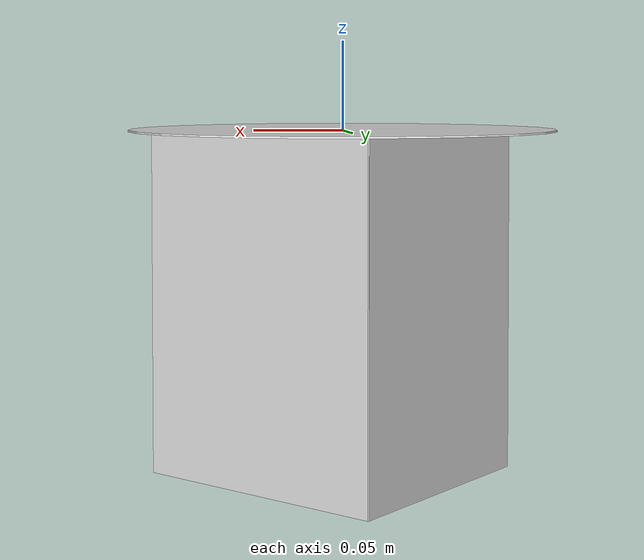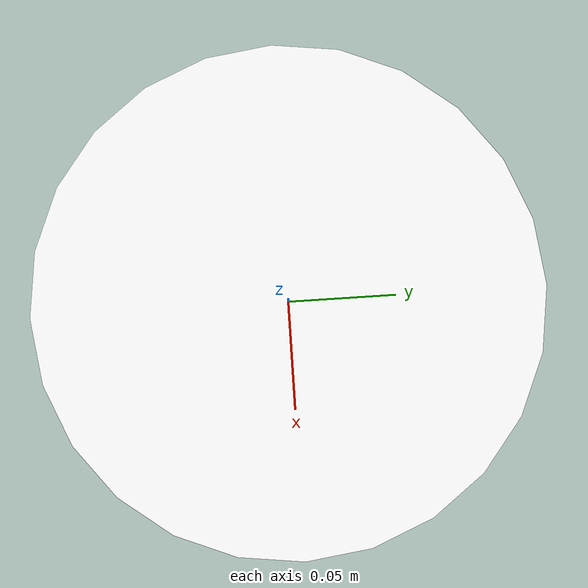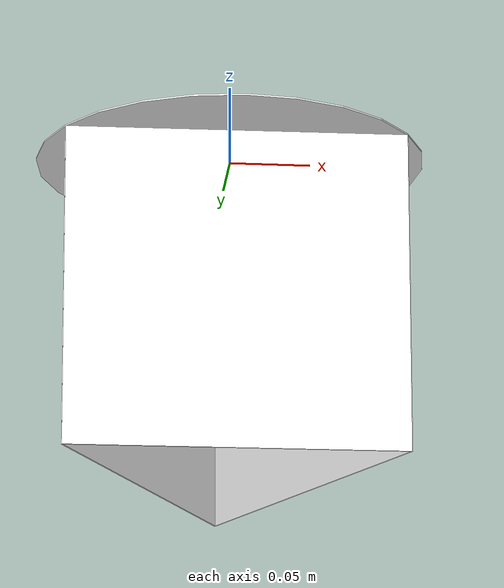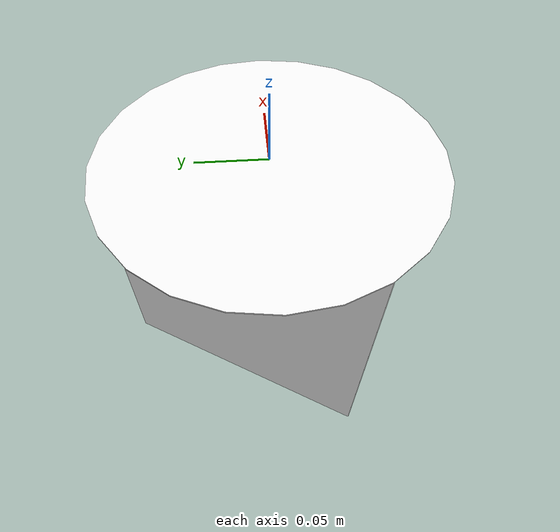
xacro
<?xml version="1.0"?>

<robot name="platform"
	xmlns:xi="http://www.w3.org/2001/XInclude"
	xmlns:gazebo="http://playerstage.sourceforge.net/gazebo/xmlschema/#gz"
	xmlns:model="http://playerstage.sourceforge.net/gazebo/xmlschema/#model"
	xmlns:sensor="http://playerstage.sourceforge.net/gazebo/xmlschema/#sensor"
	xmlns:body="http://playerstage.sourceforge.net/gazebo/xmlschema/#body"
	xmlns:geom="http://playerstage.sourceforge.net/gazebo/xmlschema/#geom"
	xmlns:joint="http://playerstage.sourceforge.net/gazebo/xmlschema/#joint"
	xmlns:interface="http://playerstage.sourceforge.net/gazebo/xmlschema/#interface"
	xmlns:rendering="http://playerstage.sourceforge.net/gazebo/xmlschema/#rendering"
	xmlns:renderable="http://playerstage.sourceforge.net/gazebo/xmlschema/#renderable"
	xmlns:controller="http://playerstage.sourceforge.net/gazebo/xmlschema/#controller"
	xmlns:physics="http://playerstage.sourceforge.net/gazebo/xmlschema/#physics">

	<property name="platform_radius" value="0.12" />
	<property name="platform_height" value="0.001" />
	<property name="tube_radius" value="0.07" />
	<property name="height" value="0.20" />
	<property name="box_width" value="0.001" />
	<property name="box_depth" value="0.207846097" />
	<property name="PI" value="3.1415926535897931" />

	<link name="platform_link">
		<child link="tube_joint" />
		<inertial>
			<mass value="1.0" />
			<origin xyz="0 0 0" rpy="0 0 0" />
			<inertia ixx="0" ixy="0" ixz="0" iyy="0" iyz="0" izz="0" />
		</inertial>
		<visual>
			<origin xyz="0 0 0" rpy="0 0 0" />
			<geometry>
				<cylinder radius="${platform_radius}" length="${platform_height}" />
			</geometry>
		</visual>
		<collision>
			<origin xyz="0 0 0" rpy="0 0 0" />
			<geometry>
				<cylinder radius="${platform_radius}" length="${platform_height}" />
			</geometry>
		</collision>
	</link>
	<gazebo reference="platform_link">
		<material>Gazebo/White</material>
	</gazebo>

	<joint name="box1_joint" type="fixed">
		<parent link="platform_link" />
		<origin xyz="0 0 0" rpy="0 0 0" />
		<child link="box1_link" />
	</joint>
	<link name="box1_link">
		<inertial>
			<mass value="1.0" />
			<origin xyz="-0.0 -0.06 ${-height/2-platform_height/2}" rpy="0 0 ${PI/2}" />
			<inertia ixx="0" ixy="0" ixz="0" iyy="0" iyz="0" izz="0" />
		</inertial>
		<visual>
			<origin xyz="-0.0 -0.06 ${-height/2-platform_height/2}" rpy="0 0 ${PI/2}" />
			<geometry>
				<box size="${box_width} ${box_depth} ${height}" />
			</geometry>
		</visual>
		<collision>
			<origin xyz="-0.0 -0.06 ${-height/2-platform_height/2}" rpy="0 0 ${PI/2}" />
			<geometry>
				<box size="${box_width} ${box_depth} ${height}" />
			</geometry>
		</collision>
	</link>
	<gazebo reference="box1_link">
		<material>Gazebo/White</material>
	</gazebo>

	<joint name="box2_joint" type="fixed">
		<parent link="platform_link" />
		<origin xyz="0 0 0" rpy="0 0 0" />
		<child link="box2_link" />
	</joint>
	<link name="box2_link">
		<inertial>
			<mass value="1.0" />
			<origin xyz="0.051961524 0.03 ${-height/2-platform_height/2}" rpy="0 0 ${PI/6}" />
			<inertia ixx="0" ixy="0" ixz="0" iyy="0" iyz="0" izz="0" />
		</inertial>
		<visual>
			<origin xyz="0.051961524 0.03 ${-height/2-platform_height/2}" rpy="0 0 ${PI/6}" />
			<geometry>
				<box size="${box_width} ${box_depth} ${height}" />
			</geometry>
		</visual>
		<collision>
			<origin xyz="0.051961524 0.03 ${-height/2-platform_height/2}" rpy="0 0 ${PI/6}" />
			<geometry>
				<box size="${box_width} ${box_depth} ${height}" />
			</geometry>
		</collision>
	</link>
	<gazebo reference="box2_link">
		<material>Gazebo/White</material>
	</gazebo>

	<joint name="box3_joint" type="fixed">
		<parent link="platform_link" />
		<origin xyz="0 0 0" rpy="0 0 0" />
		<child link="box3_link" />
	</joint>
	<link name="box3_link">
		<inertial>
			<mass value="1.0" />
			<origin xyz="-0.051961524 0.03 ${-height/2-platform_height/2}" rpy="0 0 ${-PI/6}" />
			<inertia ixx="0" ixy="0" ixz="0" iyy="0" iyz="0" izz="0" />
		</inertial>
		<visual>
			<origin xyz="-0.051961524 0.03 ${-height/2-platform_height/2}" rpy="0 0 ${-PI/6}" />
			<geometry>
				<box size="${box_width} ${box_depth} ${height}" />
			</geometry>
		</visual>
		<collision>
			<origin xyz="-0.051961524 0.03 ${-height/2-platform_height/2}" rpy="0 0 ${-PI/6}" />
			<geometry>
				<box size="${box_width} ${box_depth} ${height}" />
			</geometry>
		</collision>
	</link>
	<gazebo reference="box3_link">
		<material>Gazebo/White</material>
	</gazebo>

</robot>
